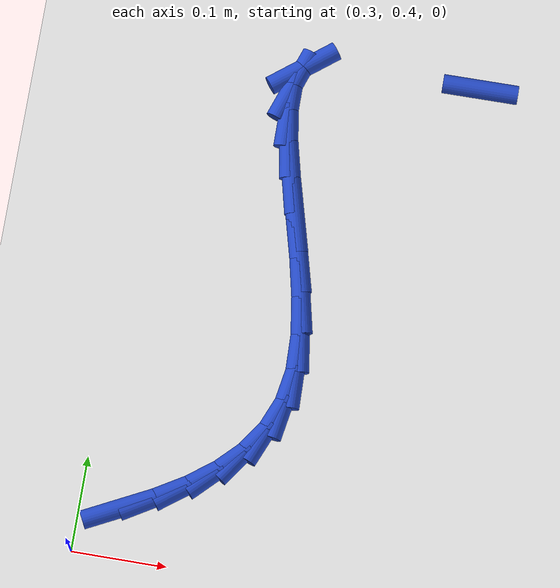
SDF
<sdf version="1.6">
 <world name="default">
  <model name="ground_plane">
   <static>1</static>
   <link name="link">
    <collision name="collision">
     <geometry><plane><normal>0 0 1</normal><size>100 100</size></plane></geometry>
     <surface><friction><ode><mu>100</mu><mu2>50</mu2></ode></friction></surface>
    </collision>
    <visual name="visual">
     <cast_shadows>0</cast_shadows>
     <geometry><plane><normal>0 0 1</normal><size>100 100</size></plane></geometry>
     <material>
      <script><uri>file://media/materials/scripts/gazebo.material</uri><name>Gazebo/WhiteGlow</name></script>
     </material>
    </visual>
   </link>
  </model>
  <model name="line">
   <link name="link_17">
    <pose>0.34161884774722917 0.4506800161873912 0.01 0 1.57 0.4679131728103945</pose>
    <collision name="collision">
     <geometry><cylinder><radius>0.01</radius><length>0.08</length></cylinder></geometry>
    </collision>
    <visual name="visual">
     <material>
      <script><name>Gazebo/Blue</name><uri>file://media/materials/scripts/gazebo.material</uri></script>
     </material>
     <geometry><cylinder><radius>0.01</radius><length>0.08</length></cylinder></geometry>
    </visual>
   </link>
   <link name="link_18">
    <pose>0.37616933684036724 0.46813987724526657 0.01 0 1.57 0.5398415569391267</pose>
    <collision name="collision">
     <geometry><cylinder><radius>0.01</radius><length>0.08</length></cylinder></geometry>
    </collision>
    <visual name="visual">
     <material>
      <script><name>Gazebo/Blue</name><uri>file://media/materials/scripts/gazebo.material</uri></script>
     </material>
     <geometry><cylinder><radius>0.01</radius><length>0.08</length></cylinder></geometry>
    </visual>
   </link>
   <link name="link_19">
    <pose>0.40795749277726895 0.4871877938820446 0.01 0 1.57 0.6429960444797768</pose>
    <collision name="collision">
     <geometry><cylinder><radius>0.01</radius><length>0.08</length></cylinder></geometry>
    </collision>
    <visual name="visual">
     <material>
      <script><name>Gazebo/Blue</name><uri>file://media/materials/scripts/gazebo.material</uri></script>
     </material>
     <geometry><cylinder><radius>0.01</radius><length>0.08</length></cylinder></geometry>
    </visual>
   </link>
   <link name="link_20">
    <pose>0.43616498146166943 0.5083211585163189 0.01 0 1.57 0.7834563902968918</pose>
    <collision name="collision">
     <geometry><cylinder><radius>0.01</radius><length>0.08</length></cylinder></geometry>
    </collision>
    <visual name="visual">
     <material>
      <script><name>Gazebo/Blue</name><uri>file://media/materials/scripts/gazebo.material</uri></script>
     </material>
     <geometry><cylinder><radius>0.01</radius><length>0.08</length></cylinder></geometry>
    </visual>
   </link>
   <link name="link_21">
    <pose>0.4599734687973036 0.5320373635666827 0.01 0 1.57 0.9642490270680982</pose>
    <collision name="collision">
     <geometry><cylinder><radius>0.01</radius><length>0.08</length></cylinder></geometry>
    </collision>
    <visual name="visual">
     <material>
      <script><name>Gazebo/Blue</name><uri>file://media/materials/scripts/gazebo.material</uri></script>
     </material>
     <geometry><cylinder><radius>0.01</radius><length>0.08</length></cylinder></geometry>
    </visual>
   </link>
   <link name="link_22">
    <pose>0.47856462068790695 0.5588338014517298 0.01 0 1.57 1.178824349810268</pose>
    <collision name="collision">
     <geometry><cylinder><radius>0.01</radius><length>0.08</length></cylinder></geometry>
    </collision>
    <visual name="visual">
     <material>
      <script><name>Gazebo/Blue</name><uri>file://media/materials/scripts/gazebo.material</uri></script>
     </material>
     <geometry><cylinder><radius>0.01</radius><length>0.08</length></cylinder></geometry>
    </visual>
   </link>
   <link name="link_23">
    <pose>0.4911201030372145 0.5892078645900533 0.01 0 1.57 1.406337395249148</pose>
    <collision name="collision">
     <geometry><cylinder><radius>0.01</radius><length>0.08</length></cylinder></geometry>
    </collision>
    <visual name="visual">
     <material>
      <script><name>Gazebo/Blue</name><uri>file://media/materials/scripts/gazebo.material</uri></script>
     </material>
     <geometry><cylinder><radius>0.01</radius><length>0.08</length></cylinder></geometry>
    </visual>
   </link>
   <link name="link_24">
    <pose>0.4968355066237401 0.62364675279365 0.01 0 1.57 -1.5446382106421586</pose>
    <collision name="collision">
     <geometry><cylinder><radius>0.01</radius><length>0.08</length></cylinder></geometry>
    </collision>
    <visual name="visual">
     <material>
      <script><name>Gazebo/Blue</name><uri>file://media/materials/scripts/gazebo.material</uri></script>
     </material>
     <geometry><cylinder><radius>0.01</radius><length>0.08</length></cylinder></geometry>
    </visual>
   </link>
   <link name="link_25">
    <pose>0.4958330920820593 0.6619593702748817 0.01 0 1.57 -1.4225984590854381</pose>
    <collision name="collision">
     <geometry><cylinder><radius>0.01</radius><length>0.08</length></cylinder></geometry>
    </collision>
    <visual name="visual">
     <material>
      <script><name>Gazebo/Blue</name><uri>file://media/materials/scripts/gazebo.material</uri></script>
     </material>
     <geometry><cylinder><radius>0.01</radius><length>0.08</length></cylinder></geometry>
    </visual>
   </link>
   <link name="link_26">
    <pose>0.489726493270545 0.7028629790733343 0.01 0 1.57 -1.3497811578116319</pose>
    <collision name="collision">
     <geometry><cylinder><radius>0.01</radius><length>0.08</length></cylinder></geometry>
    </collision>
    <visual name="visual">
     <material>
      <script><name>Gazebo/Blue</name><uri>file://media/materials/scripts/gazebo.material</uri></script>
     </material>
     <geometry><cylinder><radius>0.01</radius><length>0.08</length></cylinder></geometry>
    </visual>
   </link>
   <link name="link_27">
    <pose>0.48026428938357973 0.7449760651358923 0.01 0 1.57 -1.3127566995425688</pose>
    <collision name="collision">
     <geometry><cylinder><radius>0.01</radius><length>0.08</length></cylinder></geometry>
    </collision>
    <visual name="visual">
     <material>
      <script><name>Gazebo/Blue</name><uri>file://media/materials/scripts/gazebo.material</uri></script>
     </material>
     <geometry><cylinder><radius>0.01</radius><length>0.08</length></cylinder></geometry>
    </visual>
   </link>
   <link name="link_28">
    <pose>0.46919505961554586 0.7869171144094399 0.01 0 1.57 -1.3065525828894573</pose>
    <collision name="collision">
     <geometry><cylinder><radius>0.01</radius><length>0.08</length></cylinder></geometry>
    </collision>
    <visual name="visual">
     <material>
      <script><name>Gazebo/Blue</name><uri>file://media/materials/scripts/gazebo.material</uri></script>
     </material>
     <geometry><cylinder><radius>0.01</radius><length>0.08</length></cylinder></geometry>
    </visual>
   </link>
   <link name="link_29">
    <pose>0.45826738316082577 0.8273046128408612 0.01 0 1.57 -1.3340156547822672</pose>
    <collision name="collision">
     <geometry><cylinder><radius>0.01</radius><length>0.08</length></cylinder></geometry>
    </collision>
    <visual name="visual">
     <material>
      <script><name>Gazebo/Blue</name><uri>file://media/materials/scripts/gazebo.material</uri></script>
     </material>
     <geometry><cylinder><radius>0.01</radius><length>0.08</length></cylinder></geometry>
    </visual>
   </link>
   <link name="link_30">
    <pose>0.44922983921380194 0.8647570463770412 0.01 0 1.57 -1.4092852941443799</pose>
    <collision name="collision">
     <geometry><cylinder><radius>0.01</radius><length>0.08</length></cylinder></geometry>
    </collision>
    <visual name="visual">
     <material>
      <script><name>Gazebo/Blue</name><uri>file://media/materials/scripts/gazebo.material</uri></script>
     </material>
     <geometry><cylinder><radius>0.01</radius><length>0.08</length></cylinder></geometry>
    </visual>
   </link>
   <link name="link_31">
    <pose>0.44383100696885686 0.8978929009648635 0.01 0 1.57 -1.5703756894274108</pose>
    <collision name="collision">
     <geometry><cylinder><radius>0.01</radius><length>0.08</length></cylinder></geometry>
    </collision>
    <visual name="visual">
     <material>
      <script><name>Gazebo/Blue</name><uri>file://media/materials/scripts/gazebo.material</uri></script>
     </material>
     <geometry><cylinder><radius>0.01</radius><length>0.08</length></cylinder></geometry>
    </visual>
   </link>
   <link name="link_32">
    <pose>0.4438194656203728 0.9253306625512129 0.01 0 1.57 1.2341663769417444</pose>
    <collision name="collision">
     <geometry><cylinder><radius>0.01</radius><length>0.08</length></cylinder></geometry>
    </collision>
    <visual name="visual">
     <material>
      <script><name>Gazebo/Blue</name><uri>file://media/materials/scripts/gazebo.material</uri></script>
     </material>
     <geometry><cylinder><radius>0.01</radius><length>0.08</length></cylinder></geometry>
    </visual>
   </link>
   <link name="link_33">
    <pose>0.45094379436273235 0.9456888170829736 0.01 0 1.57 0.6629433262610746</pose>
    <collision name="collision">
     <geometry><cylinder><radius>0.01</radius><length>0.08</length></cylinder></geometry>
    </collision>
    <visual name="visual">
     <material>
      <script><name>Gazebo/Blue</name><uri>file://media/materials/scripts/gazebo.material</uri></script>
     </material>
     <geometry><cylinder><radius>0.01</radius><length>0.08</length></cylinder></geometry>
    </visual>
   </link>
   <link name="link_39">
    <pose>0.6392765568351774 0.954399033586421 0.01 0 1.57 0.004429678087722703</pose>
    <collision name="collision">
     <geometry><cylinder><radius>0.01</radius><length>0.08</length></cylinder></geometry>
    </collision>
    <visual name="visual">
     <material>
      <script><name>Gazebo/Blue</name><uri>file://media/materials/scripts/gazebo.material</uri></script>
     </material>
     <geometry><cylinder><radius>0.01</radius><length>0.08</length></cylinder></geometry>
    </visual>
   </link>
  </model>
 </world>
</sdf>
